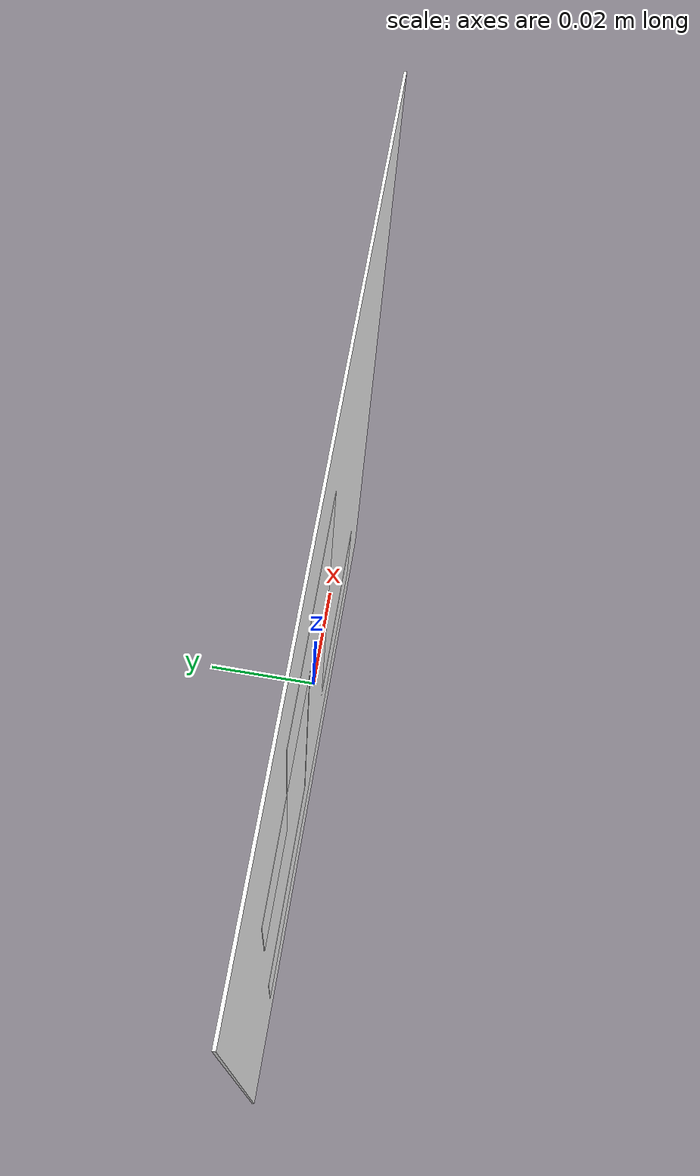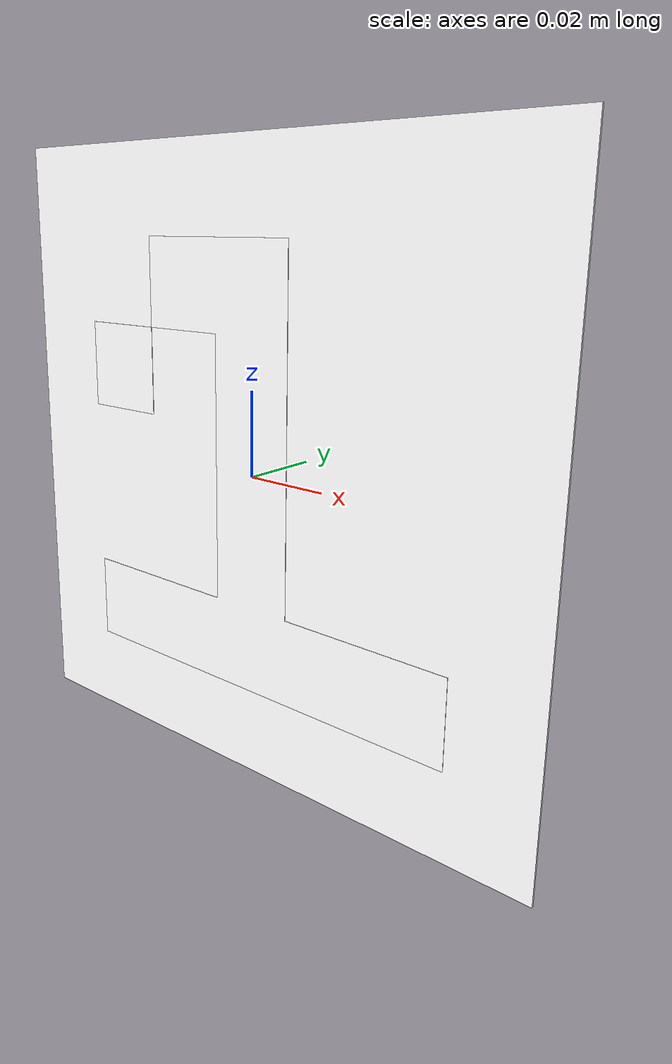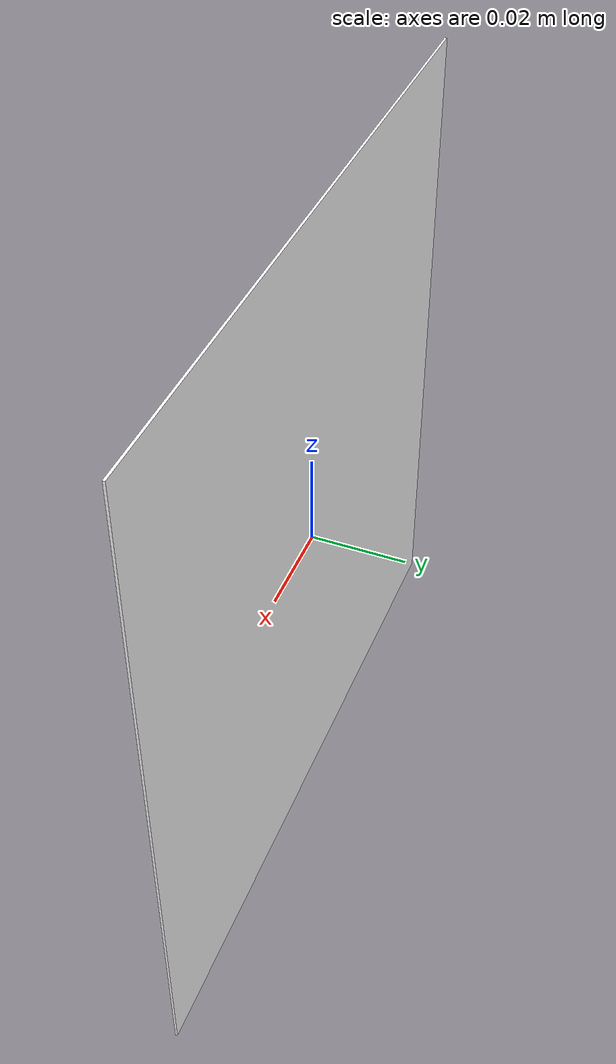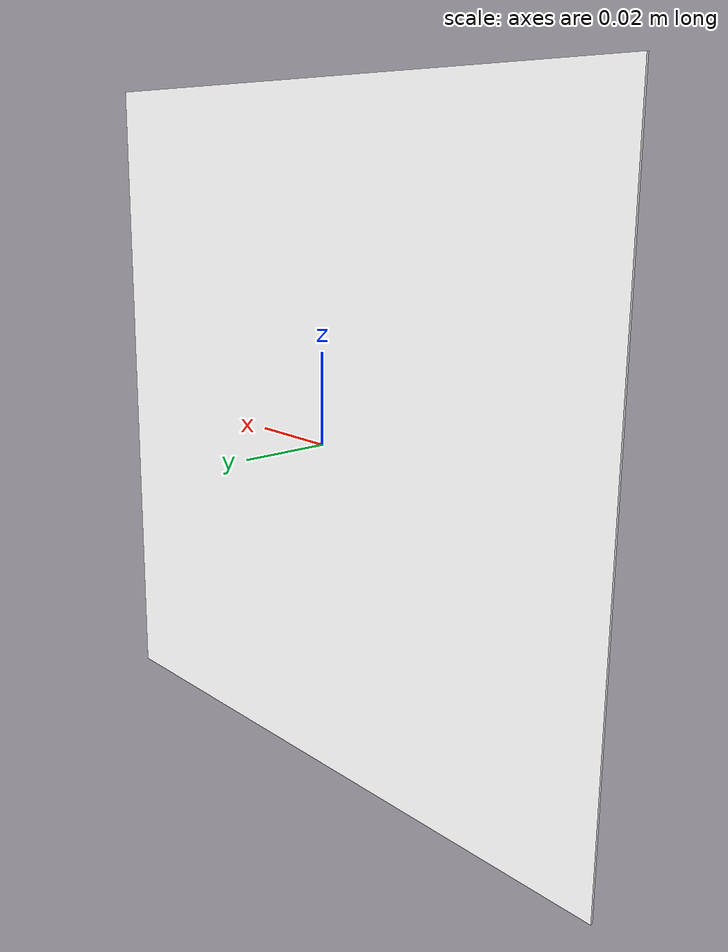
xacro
<?xml version="1.0" encoding="utf-8"?>
<robot
  name="labal1">
  <link
    name="base">
    <inertial>
      <origin
        xyz="-1.1289631580093E-17 -1.56524159470841E-17 0.00025"
        rpy="0 0 0" />
      <mass
        value="0.01125" />
      <inertia
        ixx="2.1093984375E-05"
        ixy="2.16840434497101E-22"
        ixz="0"
        iyy="2.1093984375E-05"
        iyz="-8.27180612553028E-24"
        izz="4.21875E-05" />
    </inertial>
    <visual>
      <origin
        xyz="0 0 0"
        rpy="0 0 0" />
      <geometry>
        <mesh
          filename="package://small_car/meshes/base.STL" />
      </geometry>
      <material
        name="">
        <color
          rgba="1 1 1 1" />
      </material>
    </visual>
    <collision>
      <origin
        xyz="0 0 0"
        rpy="0 0 0" />
      <geometry>
        <mesh
          filename="package://small_car/meshes/base.STL" />
      </geometry>
    </collision>
  </link>
  <link
    name="labal_one">
    <inertial>
      <origin
        xyz="-0.00593636363636365 -0.00982727272727275 0.00075"
        rpy="0 0 0" />
      <mass
        value="0.00251878" />
      <inertia
        ixx="3.10862507284394E-06"
        ixy="5.62450651563635E-07"
        ixz="-5.53177034644836E-26"
        iyy="1.58333517029848E-06"
        iyz="-1.01605774278566E-24"
        izz="4.69185529397575E-06" />
    </inertial>
    <visual>
      <origin
        xyz="0 0 0"
        rpy="0 0 0" />
      <geometry>
        <mesh
          filename="package://small_car/meshes/labal_one.STL" />
      </geometry>
      <material
        name="">
        <color
          rgba="1 1 1 1" />
      </material>
    </visual>
    <collision>
      <origin
        xyz="0 0 0"
        rpy="0 0 0" />
      <geometry>
        <mesh
          filename="package://small_car/meshes/labal_one.STL" />
      </geometry>
    </collision>
  </link>
  <joint
    name="labal_one"
    type="fixed">
    <origin
      xyz="0 0 0"
      rpy="1.5707963267949 0 0" />
    <parent
      link="base" />
    <child
      link="labal_one" />
    <axis
      xyz="0 0 0" />
  </joint>
  <gazebo reference="labal_one">
     <material>Gazebo/White </material>
  </gazebo>
  <gazebo reference="base">
     <material>Gazebo/Yellow </material>
  </gazebo>
</robot>
